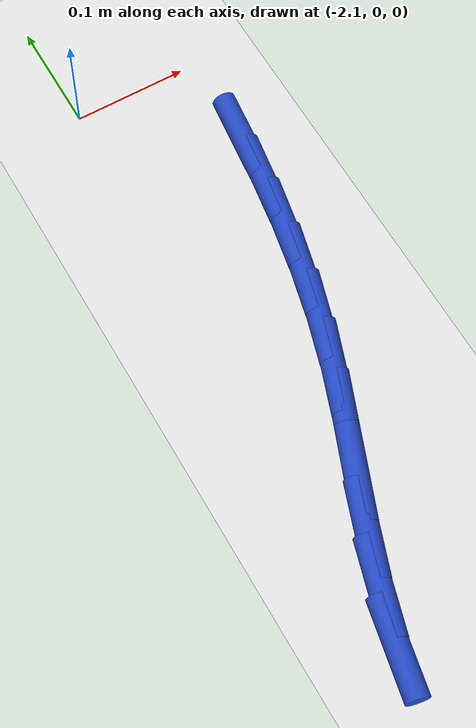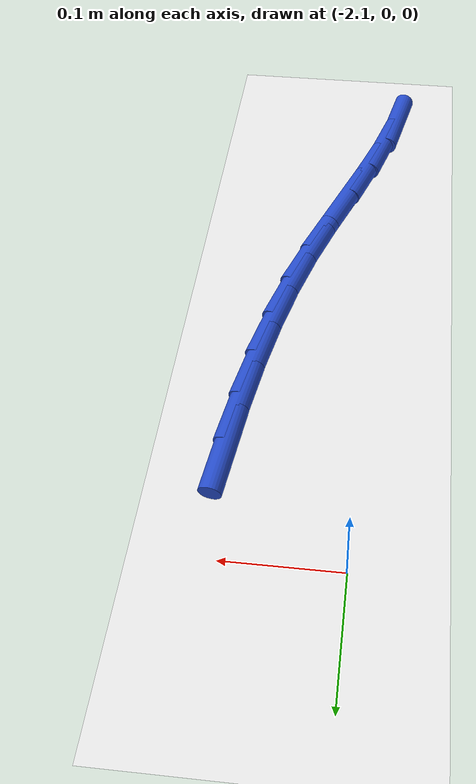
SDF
<sdf version="1.6">
 <world name="default">
  <model name="ground_plane">
   <static>1</static>
   <link name="link">
    <collision name="collision">
     <geometry><plane><normal>0 0 1</normal><size>100 100</size></plane></geometry>
     <surface><friction><ode><mu>100</mu><mu2>50</mu2></ode></friction></surface>
    </collision>
    <visual name="visual">
     <cast_shadows>0</cast_shadows>
     <geometry><plane><normal>0 0 1</normal><size>100 100</size></plane></geometry>
     <material>
      <script><uri>file://media/materials/scripts/gazebo.material</uri><name>Gazebo/WhiteGlow</name></script>
     </material>
    </visual>
   </link>
  </model>
  <model name="line">
   <link name="link_83">
    <pose>-1.9915906324491472 -0.09013363371574194 0.01 0 1.57 1.4496351856875704</pose>
    <collision name="collision">
     <geometry><cylinder><radius>0.01</radius><length>0.08</length></cylinder></geometry>
    </collision>
    <visual name="visual">
     <material>
      <script><name>Gazebo/Blue</name><uri>file://media/materials/scripts/gazebo.material</uri></script>
     </material>
     <geometry><cylinder><radius>0.01</radius><length>0.08</length></cylinder></geometry>
    </visual>
   </link>
   <link name="link_84">
    <pose>-1.9970937632586534 -0.13533109285411662 0.01 0 1.57 1.4128109724239093</pose>
    <collision name="collision">
     <geometry><cylinder><radius>0.01</radius><length>0.08</length></cylinder></geometry>
    </collision>
    <visual name="visual">
     <material>
      <script><name>Gazebo/Blue</name><uri>file://media/materials/scripts/gazebo.material</uri></script>
     </material>
     <geometry><cylinder><radius>0.01</radius><length>0.08</length></cylinder></geometry>
    </visual>
   </link>
   <link name="link_85">
    <pose>-2.004213071982834 -0.18001864506749898 0.01 0 1.57 1.3711701715749371</pose>
    <collision name="collision">
     <geometry><cylinder><radius>0.01</radius><length>0.08</length></cylinder></geometry>
    </collision>
    <visual name="visual">
     <material>
      <script><name>Gazebo/Blue</name><uri>file://media/materials/scripts/gazebo.material</uri></script>
     </material>
     <geometry><cylinder><radius>0.01</radius><length>0.08</length></cylinder></geometry>
    </visual>
   </link>
   <link name="link_86">
    <pose>-2.013129233997679 -0.22408806077071036 0.01 0 1.57 1.3245601710462371</pose>
    <collision name="collision">
     <geometry><cylinder><radius>0.01</radius><length>0.08</length></cylinder></geometry>
    </collision>
    <visual name="visual">
     <material>
      <script><name>Gazebo/Blue</name><uri>file://media/materials/scripts/gazebo.material</uri></script>
     </material>
     <geometry><cylinder><radius>0.01</radius><length>0.08</length></cylinder></geometry>
    </visual>
   </link>
   <link name="link_87">
    <pose>-2.0240229246791803 -0.2674311103785718 0.01 0 1.57 1.2728912673521176</pose>
    <collision name="collision">
     <geometry><cylinder><radius>0.01</radius><length>0.08</length></cylinder></geometry>
    </collision>
    <visual name="visual">
     <material>
      <script><name>Gazebo/Blue</name><uri>file://media/materials/scripts/gazebo.material</uri></script>
     </material>
     <geometry><cylinder><radius>0.01</radius><length>0.08</length></cylinder></geometry>
    </visual>
   </link>
   <link name="link_88">
    <pose>-2.037074819403328 -0.30993956430590425 0.01 0 1.57 1.2212431579765215</pose>
    <collision name="collision">
     <geometry><cylinder><radius>0.01</radius><length>0.08</length></cylinder></geometry>
    </collision>
    <visual name="visual">
     <material>
      <script><name>Gazebo/Blue</name><uri>file://media/materials/scripts/gazebo.material</uri></script>
     </material>
     <geometry><cylinder><radius>0.01</radius><length>0.08</length></cylinder></geometry>
    </visual>
   </link>
   <link name="link_89">
    <pose>-2.0522622732532927 -0.3516035659068599 0.01 0 1.57 1.192412062461799</pose>
    <collision name="collision">
     <geometry><cylinder><radius>0.01</radius><length>0.08</length></cylinder></geometry>
    </collision>
    <visual name="visual">
     <material>
      <script><name>Gazebo/Blue</name><uri>file://media/materials/scripts/gazebo.material</uri></script>
     </material>
     <geometry><cylinder><radius>0.01</radius><length>0.08</length></cylinder></geometry>
    </visual>
   </link>
   <link name="link_90">
    <pose>-2.0686594907654707 -0.39285023200592745 0.01 0 1.57 1.1928049043706894</pose>
    <collision name="collision">
     <geometry><cylinder><radius>0.01</radius><length>0.08</length></cylinder></geometry>
    </collision>
    <visual name="visual">
     <material>
      <script><name>Gazebo/Blue</name><uri>file://media/materials/scripts/gazebo.material</uri></script>
     </material>
     <geometry><cylinder><radius>0.01</radius><length>0.08</length></cylinder></geometry>
    </visual>
   </link>
   <link name="link_91">
    <pose>-2.085089993061224 -0.43422796817864134 0.01 0 1.57 1.2221562594405566</pose>
    <collision name="collision">
     <geometry><cylinder><radius>0.01</radius><length>0.08</length></cylinder></geometry>
    </collision>
    <visual name="visual">
     <material>
      <script><name>Gazebo/Blue</name><uri>file://media/materials/scripts/gazebo.material</uri></script>
     </material>
     <geometry><cylinder><radius>0.01</radius><length>0.08</length></cylinder></geometry>
    </visual>
   </link>
   <link name="link_92">
    <pose>-2.1003772916361667 -0.47628518465778535 0.01 0 1.57 1.2797195133899957</pose>
    <collision name="collision">
     <geometry><cylinder><radius>0.01</radius><length>0.08</length></cylinder></geometry>
    </collision>
    <visual name="visual">
     <material>
      <script><name>Gazebo/Blue</name><uri>file://media/materials/scripts/gazebo.material</uri></script>
     </material>
     <geometry><cylinder><radius>0.01</radius><length>0.08</length></cylinder></geometry>
    </visual>
   </link>
   <link name="link_93">
    <pose>-2.1133448979859106 -0.5195702916761431 0.01 0 1.57 1.3636228379890194</pose>
    <collision name="collision">
     <geometry><cylinder><radius>0.01</radius><length>0.08</length></cylinder></geometry>
    </collision>
    <visual name="visual">
     <material>
      <script><name>Gazebo/Blue</name><uri>file://media/materials/scripts/gazebo.material</uri></script>
     </material>
     <geometry><cylinder><radius>0.01</radius><length>0.08</length></cylinder></geometry>
    </visual>
   </link>
  </model>
 </world>
</sdf>
